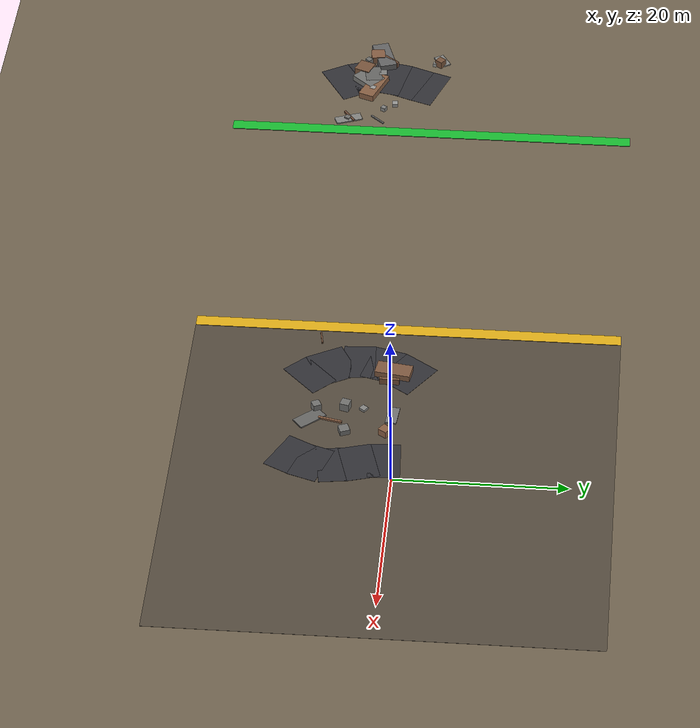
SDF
<sdf version="1.6">
 <world name="navitas_arena">
  <model name="ground_plane">
   <static>true</static>
   <link name="link">
    <collision name="collision">
     <geometry><plane><normal>0 0 1</normal><size>400 400</size></plane></geometry>
     <surface><friction><ode><mu>0.550</mu><mu2>0.550</mu2></ode></friction></surface>
    </collision>
    <visual name="visual">
     <cast_shadows>false</cast_shadows>
     <geometry><plane><normal>0 0 1</normal><size>400 400</size></plane></geometry>
     <material><ambient>0.450 0.400 0.320 1</ambient><diffuse>0.450 0.400 0.320 1</diffuse></material>
    </visual>
   </link>
  </model>
  <model name="brd_kolay_E">
   <static>true</static>
   <pose>-64.200 0.000 0.040 0 0 0.000</pose>
   <link name="link">
    <collision name="col"><geometry><box><size>1.600 50.000 0.080</size></box></geometry></collision>
    <visual name="vis">
     <geometry><box><size>1.600 50.000 0.080</size></box></geometry>
     <material><ambient>0.10 0.75 0.20 1</ambient><diffuse>0.10 0.75 0.20 1</diffuse></material>
    </visual>
   </link>
  </model>
  <model name="road_kolay_3_6">
   <static>true</static>
   <pose>-74.253 -11.639 0.040 0 0 2.099</pose>
   <link name="link">
    <collision name="col"><geometry><box><size>3.709 6.600 0.020</size></box></geometry></collision>
    <visual name="vis">
     <geometry><box><size>3.709 6.600 0.020</size></box></geometry>
     <material><ambient>0.20 0.20 0.22 1</ambient><diffuse>0.20 0.20 0.22 1</diffuse></material>
    </visual>
   </link>
  </model>
  <model name="road_kolay_3_7">
   <static>true</static>
   <pose>-75.410 -9.213 0.040 0 0 1.925</pose>
   <link name="link">
    <collision name="col"><geometry><box><size>3.487 6.600 0.020</size></box></geometry></collision>
    <visual name="vis">
     <geometry><box><size>3.487 6.600 0.020</size></box></geometry>
     <material><ambient>0.20 0.20 0.22 1</ambient><diffuse>0.20 0.20 0.22 1</diffuse></material>
    </visual>
   </link>
  </model>
  <model name="road_kolay_3_8">
   <static>true</static>
   <pose>-75.487 -6.250 0.040 0 0 1.362</pose>
   <link name="link">
    <collision name="col"><geometry><box><size>4.478 6.600 0.020</size></box></geometry></collision>
    <visual name="vis">
     <geometry><box><size>4.478 6.600 0.020</size></box></geometry>
     <material><ambient>0.20 0.20 0.22 1</ambient><diffuse>0.20 0.20 0.22 1</diffuse></material>
    </visual>
   </link>
  </model>
  <model name="road_kolay_3_9">
   <static>true</static>
   <pose>-74.643 -3.333 0.040 0 0 1.186</pose>
   <link name="link">
    <collision name="col"><geometry><box><size>3.418 6.600 0.020</size></box></geometry></collision>
    <visual name="vis">
     <geometry><box><size>3.418 6.600 0.020</size></box></geometry>
     <material><ambient>0.20 0.20 0.22 1</ambient><diffuse>0.20 0.20 0.22 1</diffuse></material>
    </visual>
   </link>
  </model>
  <model name="road_kolay_3_10">
   <static>true</static>
   <pose>-73.744 -1.000 0.040 0 0 1.221</pose>
   <link name="link">
    <collision name="col"><geometry><box><size>3.384 6.600 0.020</size></box></geometry></collision>
    <visual name="vis">
     <geometry><box><size>3.384 6.600 0.020</size></box></geometry>
     <material><ambient>0.20 0.20 0.22 1</ambient><diffuse>0.20 0.20 0.22 1</diffuse></material>
    </visual>
   </link>
  </model>
  <model name="blk_kolay_3_0_0">
   <static>true</static>
   <pose>-79.238 -6.801 0.400 0 0 0.859</pose>
   <link name="link">
    <collision name="col"><geometry><box><size>4.150 0.370 0.800</size></box></geometry></collision>
    <visual name="vis">
     <geometry><box><size>4.150 0.370 0.800</size></box></geometry>
     <material><ambient>0.47 0.33 0.24 1</ambient><diffuse>0.47 0.33 0.24 1</diffuse></material>
    </visual>
   </link>
  </model>
  <model name="blk_kolay_3_0_1">
   <static>true</static>
   <pose>-78.430 -8.975 0.400 0 0 0.874</pose>
   <link name="link">
    <collision name="col"><geometry><box><size>0.721 0.721 0.800</size></box></geometry></collision>
    <visual name="vis">
     <geometry><box><size>0.721 0.721 0.800</size></box></geometry>
     <material><ambient>0.44 0.44 0.43 1</ambient><diffuse>0.44 0.44 0.43 1</diffuse></material>
    </visual>
   </link>
  </model>
  <model name="blk_kolay_3_0_2">
   <static>true</static>
   <pose>-75.684 -6.960 0.400 0 0 0.058</pose>
   <link name="link">
    <collision name="col"><geometry><box><size>1.010 1.010 0.800</size></box></geometry></collision>
    <visual name="vis">
     <geometry><box><size>1.010 1.010 0.800</size></box></geometry>
     <material><ambient>0.51 0.51 0.50 1</ambient><diffuse>0.51 0.51 0.50 1</diffuse></material>
    </visual>
   </link>
  </model>
  <model name="blk_kolay_3_0_3">
   <static>true</static>
   <pose>-72.397 -7.971 0.400 0 0 2.978</pose>
   <link name="link">
    <collision name="col"><geometry><box><size>0.697 0.697 0.800</size></box></geometry></collision>
    <visual name="vis">
     <geometry><box><size>0.697 0.697 0.800</size></box></geometry>
     <material><ambient>0.61 0.61 0.60 1</ambient><diffuse>0.61 0.61 0.60 1</diffuse></material>
    </visual>
   </link>
  </model>
  <model name="blk_kolay_3_0_4">
   <static>true</static>
   <pose>-74.531 -8.688 0.400 0 0 0.829</pose>
   <link name="link">
    <collision name="col"><geometry><box><size>3.274 2.562 0.800</size></box></geometry></collision>
    <visual name="vis">
     <geometry><box><size>3.274 2.562 0.800</size></box></geometry>
     <material><ambient>0.45 0.45 0.44 1</ambient><diffuse>0.45 0.45 0.44 1</diffuse></material>
    </visual>
   </link>
  </model>
  <model name="blk_kolay_3_0_5">
   <static>true</static>
   <pose>-75.286 -8.170 0.400 0 0 0.177</pose>
   <link name="link">
    <collision name="col"><geometry><box><size>2.778 2.057 0.800</size></box></geometry></collision>
    <visual name="vis">
     <geometry><box><size>2.778 2.057 0.800</size></box></geometry>
     <material><ambient>0.41 0.41 0.40 1</ambient><diffuse>0.41 0.41 0.40 1</diffuse></material>
    </visual>
   </link>
  </model>
  <model name="blk_kolay_3_0_6">
   <static>true</static>
   <pose>-79.535 -7.891 0.453 0 0 1.712</pose>
   <link name="link">
    <collision name="col"><geometry><box><size>1.735 1.735 0.906</size></box></geometry></collision>
    <visual name="vis">
     <geometry><box><size>1.735 1.735 0.906</size></box></geometry>
     <material><ambient>0.53 0.37 0.27 1</ambient><diffuse>0.53 0.37 0.27 1</diffuse></material>
    </visual>
   </link>
  </model>
  <model name="blk_kolay_3_0_7">
   <static>true</static>
   <pose>-72.973 -7.922 0.400 0 0 2.777</pose>
   <link name="link">
    <collision name="col"><geometry><box><size>4.862 1.963 0.800</size></box></geometry></collision>
    <visual name="vis">
     <geometry><box><size>4.862 1.963 0.800</size></box></geometry>
     <material><ambient>0.54 0.38 0.27 1</ambient><diffuse>0.54 0.38 0.27 1</diffuse></material>
    </visual>
   </link>
  </model>
  <model name="blk_kolay_3_0_8">
   <static>true</static>
   <pose>-79.492 -7.108 0.400 0 0 0.311</pose>
   <link name="link">
    <collision name="col"><geometry><box><size>4.784 2.132 0.800</size></box></geometry></collision>
    <visual name="vis">
     <geometry><box><size>4.784 2.132 0.800</size></box></geometry>
     <material><ambient>0.40 0.40 0.40 1</ambient><diffuse>0.40 0.40 0.40 1</diffuse></material>
    </visual>
   </link>
  </model>
  <model name="blk_kolay_3_0_9">
   <static>true</static>
   <pose>-76.672 -9.365 0.457 0 0 2.764</pose>
   <link name="link">
    <collision name="col"><geometry><box><size>2.006 2.006 0.914</size></box></geometry></collision>
    <visual name="vis">
     <geometry><box><size>2.006 2.006 0.914</size></box></geometry>
     <material><ambient>0.48 0.34 0.24 1</ambient><diffuse>0.48 0.34 0.24 1</diffuse></material>
    </visual>
   </link>
  </model>
  <model name="deb_kolay_0">
   <static>true</static>
   <pose>-79.591 0.379 0.084 0 0 0.523</pose>
   <link name="link">
    <collision name="col"><geometry><box><size>2.205 1.316 0.168</size></box></geometry></collision>
    <visual name="vis">
     <geometry><box><size>2.205 1.316 0.168</size></box></geometry>
     <material><ambient>0.52 0.52 0.51 1</ambient><diffuse>0.52 0.52 0.51 1</diffuse></material>
    </visual>
   </link>
  </model>
  <model name="deb_kolay_4">
   <static>true</static>
   <pose>-69.728 -4.949 0.243 0 0 0.044</pose>
   <link name="link">
    <collision name="col"><geometry><box><size>0.673 0.673 0.487</size></box></geometry></collision>
    <visual name="vis">
     <geometry><box><size>0.673 0.673 0.487</size></box></geometry>
     <material><ambient>0.60 0.60 0.59 1</ambient><diffuse>0.60 0.60 0.59 1</diffuse></material>
    </visual>
   </link>
  </model>
  <model name="deb_kolay_12">
   <static>true</static>
   <pose>-66.558 -10.695 0.169 0 0 2.631</pose>
   <link name="link">
    <collision name="col"><geometry><box><size>0.663 0.663 0.339</size></box></geometry></collision>
    <visual name="vis">
     <geometry><box><size>0.663 0.663 0.339</size></box></geometry>
     <material><ambient>0.44 0.44 0.43 1</ambient><diffuse>0.44 0.44 0.43 1</diffuse></material>
    </visual>
   </link>
  </model>
  <model name="deb_kolay_20">
   <static>true</static>
   <pose>-78.612 -0.494 0.232 0 0 1.375</pose>
   <link name="link">
    <collision name="col"><geometry><box><size>0.423 0.423 0.465</size></box></geometry></collision>
    <visual name="vis">
     <geometry><box><size>0.423 0.423 0.465</size></box></geometry>
     <material><ambient>0.61 0.61 0.59 1</ambient><diffuse>0.61 0.61 0.59 1</diffuse></material>
    </visual>
   </link>
  </model>
  <model name="deb_kolay_38">
   <static>true</static>
   <pose>-66.448 -10.611 0.084 0 0 1.937</pose>
   <link name="link">
    <collision name="col"><geometry><box><size>3.359 1.267 0.168</size></box></geometry></collision>
    <visual name="vis">
     <geometry><box><size>3.359 1.267 0.168</size></box></geometry>
     <material><ambient>0.52 0.52 0.51 1</ambient><diffuse>0.52 0.52 0.51 1</diffuse></material>
    </visual>
   </link>
  </model>
  <model name="deb_kolay_45">
   <static>true</static>
   <pose>-66.579 -6.964 0.069 0 0 0.840</pose>
   <link name="link">
    <collision name="col"><geometry><box><size>2.232 0.213 0.137</size></box></geometry></collision>
    <visual name="vis">
     <geometry><box><size>2.232 0.213 0.137</size></box></geometry>
     <material><ambient>0.46 0.46 0.45 1</ambient><diffuse>0.46 0.46 0.45 1</diffuse></material>
    </visual>
   </link>
  </model>
  <model name="deb_kolay_74">
   <static>true</static>
   <pose>-78.727 0.230 0.464 0 0 2.539</pose>
   <link name="link">
    <collision name="col"><geometry><box><size>0.962 0.962 0.927</size></box></geometry></collision>
    <visual name="vis">
     <geometry><box><size>0.962 0.962 0.927</size></box></geometry>
     <material><ambient>0.47 0.33 0.23 1</ambient><diffuse>0.47 0.33 0.23 1</diffuse></material>
    </visual>
   </link>
  </model>
  <model name="deb_kolay_106">
   <static>true</static>
   <pose>-68.670 -6.317 0.258 0 0 2.636</pose>
   <link name="link">
    <collision name="col"><geometry><box><size>0.609 0.609 0.516</size></box></geometry></collision>
    <visual name="vis">
     <geometry><box><size>0.609 0.609 0.516</size></box></geometry>
     <material><ambient>0.51 0.51 0.50 1</ambient><diffuse>0.51 0.51 0.50 1</diffuse></material>
    </visual>
   </link>
  </model>
  <model name="deb_kolay_113">
   <static>true</static>
   <pose>-66.928 -10.543 0.131 0 0 0.618</pose>
   <link name="link">
    <collision name="col"><geometry><box><size>2.205 0.245 0.261</size></box></geometry></collision>
    <visual name="vis">
     <geometry><box><size>2.205 0.245 0.261</size></box></geometry>
     <material><ambient>0.49 0.34 0.25 1</ambient><diffuse>0.49 0.34 0.25 1</diffuse></material>
    </visual>
   </link>
  </model>
  <model name="gd_orta">
   <static>true</static>
   <pose>0.000 0.000 0.010 0 0 0.000</pose>
   <link name="link">
    <collision name="col"><geometry><box><size>50.000 50.000 0.020</size></box></geometry></collision>
    <visual name="vis">
     <geometry><box><size>50.000 50.000 0.020</size></box></geometry>
     <material><ambient>0.34 0.30 0.25 1</ambient><diffuse>0.34 0.30 0.25 1</diffuse></material>
    </visual>
   </link>
  </model>
  <model name="brd_orta_W">
   <static>true</static>
   <pose>-25.800 0.000 0.040 0 0 0.000</pose>
   <link name="link">
    <collision name="col"><geometry><box><size>1.600 50.000 0.080</size></box></geometry></collision>
    <visual name="vis">
     <geometry><box><size>1.600 50.000 0.080</size></box></geometry>
     <material><ambient>0.90 0.70 0.10 1</ambient><diffuse>0.90 0.70 0.10 1</diffuse></material>
    </visual>
   </link>
  </model>
  <model name="road_orta_1_8">
   <static>true</static>
   <pose>-17.053 -10.732 0.040 0 0 2.338</pose>
   <link name="link">
    <collision name="col"><geometry><box><size>3.466 5.500 0.020</size></box></geometry></collision>
    <visual name="vis">
     <geometry><box><size>3.466 5.500 0.020</size></box></geometry>
     <material><ambient>0.20 0.20 0.22 1</ambient><diffuse>0.20 0.20 0.22 1</diffuse></material>
    </visual>
   </link>
  </model>
  <model name="road_orta_1_9">
   <static>true</static>
   <pose>-18.810 -8.204 0.040 0 0 2.066</pose>
   <link name="link">
    <collision name="col"><geometry><box><size>4.547 5.500 0.020</size></box></geometry></collision>
    <visual name="vis">
     <geometry><box><size>4.547 5.500 0.020</size></box></geometry>
     <material><ambient>0.20 0.20 0.22 1</ambient><diffuse>0.20 0.20 0.22 1</diffuse></material>
    </visual>
   </link>
  </model>
  <model name="road_orta_1_10">
   <static>true</static>
   <pose>-19.743 -5.200 0.040 0 0 1.618</pose>
   <link name="link">
    <collision name="col"><geometry><box><size>3.703 5.500 0.020</size></box></geometry></collision>
    <visual name="vis">
     <geometry><box><size>3.703 5.500 0.020</size></box></geometry>
     <material><ambient>0.20 0.20 0.22 1</ambient><diffuse>0.20 0.20 0.22 1</diffuse></material>
    </visual>
   </link>
  </model>
  <model name="road_orta_1_11">
   <static>true</static>
   <pose>-19.430 -2.400 0.040 0 0 1.307</pose>
   <link name="link">
    <collision name="col"><geometry><box><size>3.800 5.500 0.020</size></box></geometry></collision>
    <visual name="vis">
     <geometry><box><size>3.800 5.500 0.020</size></box></geometry>
     <material><ambient>0.20 0.20 0.22 1</ambient><diffuse>0.20 0.20 0.22 1</diffuse></material>
    </visual>
   </link>
  </model>
  <model name="road_orta_1_12">
   <static>true</static>
   <pose>-17.992 0.500 0.040 0 0 0.956</pose>
   <link name="link">
    <collision name="col"><geometry><box><size>4.573 5.500 0.020</size></box></geometry></collision>
    <visual name="vis">
     <geometry><box><size>4.573 5.500 0.020</size></box></geometry>
     <material><ambient>0.20 0.20 0.22 1</ambient><diffuse>0.20 0.20 0.22 1</diffuse></material>
    </visual>
   </link>
  </model>
  <model name="road_orta_2_4">
   <static>true</static>
   <pose>-3.178 -11.639 0.040 0 0 1.098</pose>
   <link name="link">
    <collision name="col"><geometry><box><size>3.624 5.500 0.020</size></box></geometry></collision>
    <visual name="vis">
     <geometry><box><size>3.624 5.500 0.020</size></box></geometry>
     <material><ambient>0.20 0.20 0.22 1</ambient><diffuse>0.20 0.20 0.22 1</diffuse></material>
    </visual>
   </link>
  </model>
  <model name="road_orta_2_5">
   <static>true</static>
   <pose>-2.150 -9.213 0.040 0 0 1.246</pose>
   <link name="link">
    <collision name="col"><geometry><box><size>3.460 5.500 0.020</size></box></geometry></collision>
    <visual name="vis">
     <geometry><box><size>3.460 5.500 0.020</size></box></geometry>
     <material><ambient>0.20 0.20 0.22 1</ambient><diffuse>0.20 0.20 0.22 1</diffuse></material>
    </visual>
   </link>
  </model>
  <model name="road_orta_2_6">
   <static>true</static>
   <pose>-1.937 -6.600 0.040 0 0 1.710</pose>
   <link name="link">
    <collision name="col"><geometry><box><size>3.727 5.500 0.020</size></box></geometry></collision>
    <visual name="vis">
     <geometry><box><size>3.727 5.500 0.020</size></box></geometry>
     <material><ambient>0.20 0.20 0.22 1</ambient><diffuse>0.20 0.20 0.22 1</diffuse></material>
    </visual>
   </link>
  </model>
  <model name="road_orta_2_7">
   <static>true</static>
   <pose>-2.532 -3.800 0.040 0 0 1.849</pose>
   <link name="link">
    <collision name="col"><geometry><box><size>3.812 5.500 0.020</size></box></geometry></collision>
    <visual name="vis">
     <geometry><box><size>3.812 5.500 0.020</size></box></geometry>
     <material><ambient>0.20 0.20 0.22 1</ambient><diffuse>0.20 0.20 0.22 1</diffuse></material>
    </visual>
   </link>
  </model>
  <model name="road_orta_2_8">
   <static>true</static>
   <pose>-3.005 -1.000 0.040 0 0 1.623</pose>
   <link name="link">
    <collision name="col"><geometry><box><size>3.704 5.500 0.020</size></box></geometry></collision>
    <visual name="vis">
     <geometry><box><size>3.704 5.500 0.020</size></box></geometry>
     <material><ambient>0.20 0.20 0.22 1</ambient><diffuse>0.20 0.20 0.22 1</diffuse></material>
    </visual>
   </link>
  </model>
  <model name="blk_orta_1_1_6">
   <static>true</static>
   <pose>-17.990 -1.056 0.400 0 0 1.412</pose>
   <link name="link">
    <collision name="col"><geometry><box><size>4.155 2.004 0.800</size></box></geometry></collision>
    <visual name="vis">
     <geometry><box><size>4.155 2.004 0.800</size></box></geometry>
     <material><ambient>0.51 0.36 0.26 1</ambient><diffuse>0.51 0.36 0.26 1</diffuse></material>
    </visual>
   </link>
  </model>
  <model name="blk_orta_1_1_7">
   <static>true</static>
   <pose>-16.243 -1.436 0.400 0 0 1.529</pose>
   <link name="link">
    <collision name="col"><geometry><box><size>2.318 0.396 0.800</size></box></geometry></collision>
    <visual name="vis">
     <geometry><box><size>2.318 0.396 0.800</size></box></geometry>
     <material><ambient>0.47 0.33 0.23 1</ambient><diffuse>0.47 0.33 0.23 1</diffuse></material>
    </visual>
   </link>
  </model>
  <model name="deb_orta_7">
   <static>true</static>
   <pose>-23.571 -9.945 0.138 0 0 0.179</pose>
   <link name="link">
    <collision name="col"><geometry><box><size>1.764 0.163 0.275</size></box></geometry></collision>
    <visual name="vis">
     <geometry><box><size>1.764 0.163 0.275</size></box></geometry>
     <material><ambient>0.47 0.33 0.24 1</ambient><diffuse>0.47 0.33 0.24 1</diffuse></material>
    </visual>
   </link>
  </model>
  <model name="deb_orta_13">
   <static>true</static>
   <pose>-7.537 -1.268 0.444 0 0 0.968</pose>
   <link name="link">
    <collision name="col"><geometry><box><size>1.111 1.111 0.888</size></box></geometry></collision>
    <visual name="vis">
     <geometry><box><size>1.111 1.111 0.888</size></box></geometry>
     <material><ambient>0.54 0.38 0.27 1</ambient><diffuse>0.54 0.38 0.27 1</diffuse></material>
    </visual>
   </link>
  </model>
  <model name="deb_orta_27">
   <static>true</static>
   <pose>-7.550 -5.945 0.335 0 0 1.932</pose>
   <link name="link">
    <collision name="col"><geometry><box><size>1.170 1.170 0.671</size></box></geometry></collision>
    <visual name="vis">
     <geometry><box><size>1.170 1.170 0.671</size></box></geometry>
     <material><ambient>0.45 0.45 0.44 1</ambient><diffuse>0.45 0.45 0.44 1</diffuse></material>
    </visual>
   </link>
  </model>
  <model name="deb_orta_37">
   <static>true</static>
   <pose>-9.379 -7.688 0.124 0 0 1.343</pose>
   <link name="link">
    <collision name="col"><geometry><box><size>2.807 0.274 0.248</size></box></geometry></collision>
    <visual name="vis">
     <geometry><box><size>2.807 0.274 0.248</size></box></geometry>
     <material><ambient>0.55 0.38 0.27 1</ambient><diffuse>0.55 0.38 0.27 1</diffuse></material>
    </visual>
   </link>
  </model>
  <model name="deb_orta_39">
   <static>true</static>
   <pose>-11.574 -6.106 0.514 0 0 2.869</pose>
   <link name="link">
    <collision name="col"><geometry><box><size>1.064 1.064 1.027</size></box></geometry></collision>
    <visual name="vis">
     <geometry><box><size>1.064 1.064 1.027</size></box></geometry>
     <material><ambient>0.45 0.45 0.44 1</ambient><diffuse>0.45 0.45 0.44 1</diffuse></material>
    </visual>
   </link>
  </model>
  <model name="deb_orta_80">
   <static>true</static>
   <pose>-10.640 -0.636 0.091 0 0 3.044</pose>
   <link name="link">
    <collision name="col"><geometry><box><size>2.664 1.295 0.182</size></box></geometry></collision>
    <visual name="vis">
     <geometry><box><size>2.664 1.295 0.182</size></box></geometry>
     <material><ambient>0.46 0.46 0.46 1</ambient><diffuse>0.46 0.46 0.46 1</diffuse></material>
    </visual>
   </link>
  </model>
  <model name="deb_orta_103">
   <static>true</static>
   <pose>-11.529 -4.008 0.154 0 0 0.906</pose>
   <link name="link">
    <collision name="col"><geometry><box><size>0.754 0.754 0.308</size></box></geometry></collision>
    <visual name="vis">
     <geometry><box><size>0.754 0.754 0.308</size></box></geometry>
     <material><ambient>0.53 0.53 0.52 1</ambient><diffuse>0.53 0.53 0.52 1</diffuse></material>
    </visual>
   </link>
  </model>
  <model name="deb_orta_119">
   <static>true</static>
   <pose>-11.250 -9.449 0.452 0 0 0.467</pose>
   <link name="link">
    <collision name="col"><geometry><box><size>0.962 0.962 0.904</size></box></geometry></collision>
    <visual name="vis">
     <geometry><box><size>0.962 0.962 0.904</size></box></geometry>
     <material><ambient>0.45 0.45 0.44 1</ambient><diffuse>0.45 0.45 0.44 1</diffuse></material>
    </visual>
   </link>
  </model>
  <model name="deb_orta_152">
   <static>true</static>
   <pose>-9.530 -10.064 0.093 0 0 2.285</pose>
   <link name="link">
    <collision name="col"><geometry><box><size>3.497 1.707 0.185</size></box></geometry></collision>
    <visual name="vis">
     <geometry><box><size>3.497 1.707 0.185</size></box></geometry>
     <material><ambient>0.41 0.41 0.40 1</ambient><diffuse>0.41 0.41 0.40 1</diffuse></material>
    </visual>
   </link>
  </model>
 </world>
</sdf>
